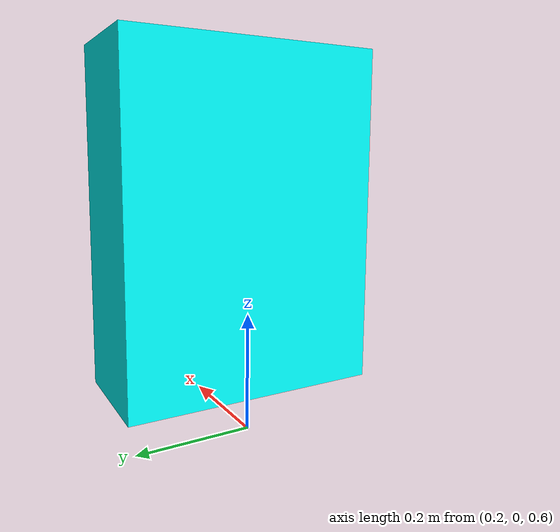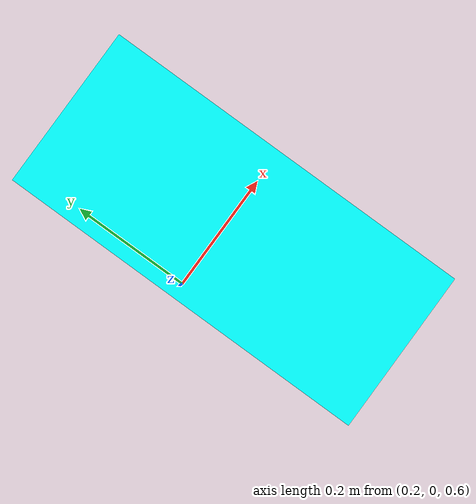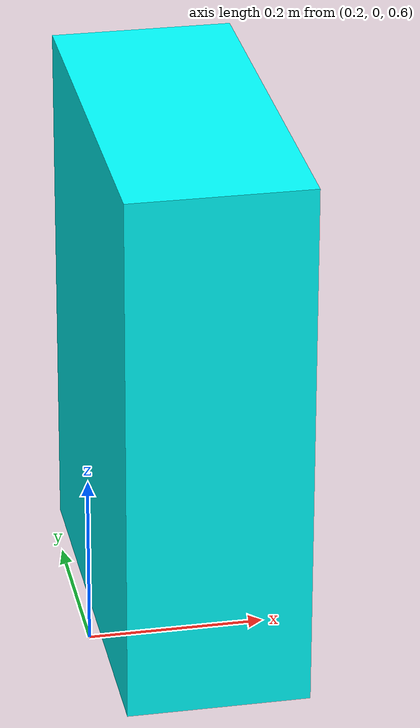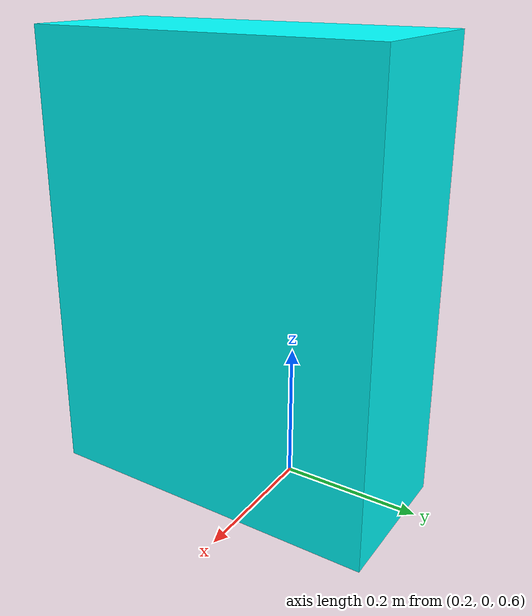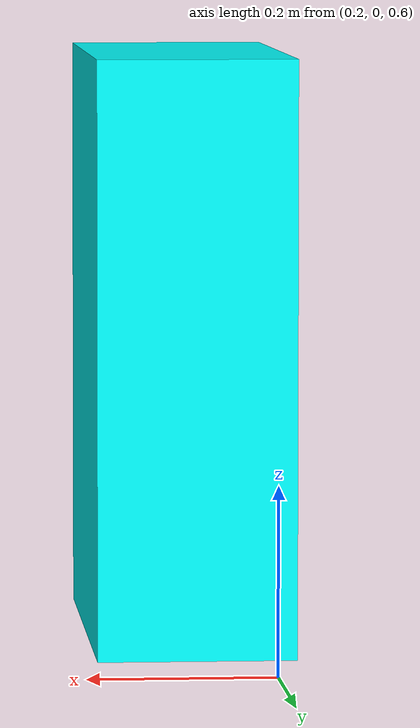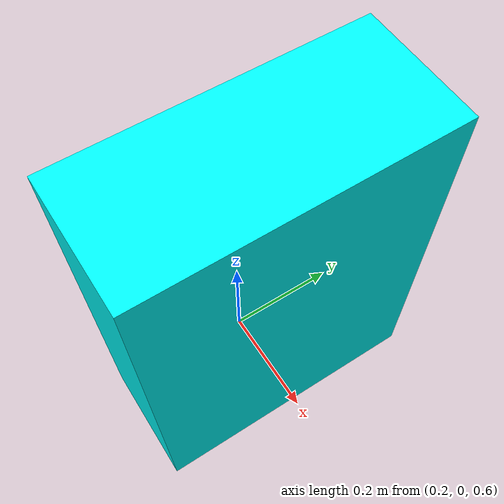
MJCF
<mujoco model="shelf">
    <worldbody>

        <body name="box_shelf" pos='0.30 -0.02 0.95'>
            <joint name="box_shelf" type="free"/>
            <geom type='box' size='0.1 0.23 0.3' pos='0 0 0 ' euler='-0 0.0 -0'  friction='1 0.5 0.5' contype='2' conaffinity="64" mass='0.3' condim="3" rgba="0 1 1 1" />
        </body>

    </worldbody>
</mujoco>
